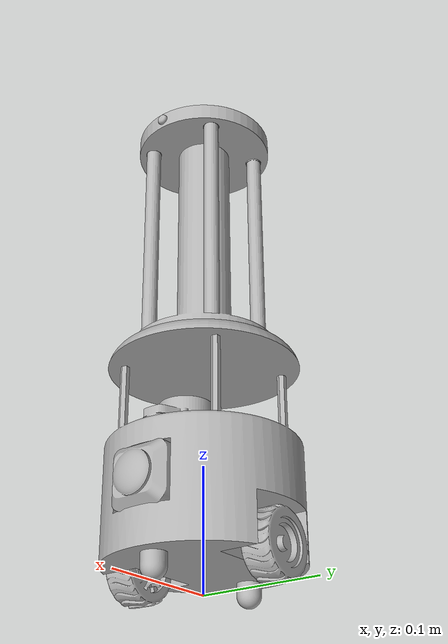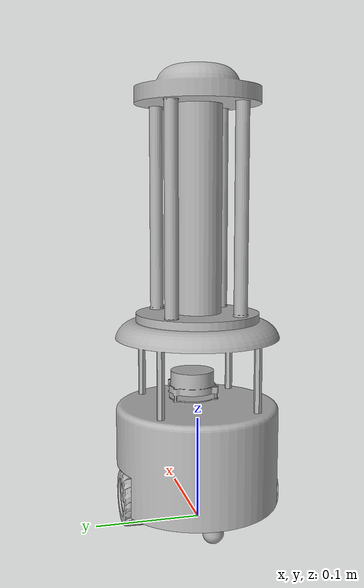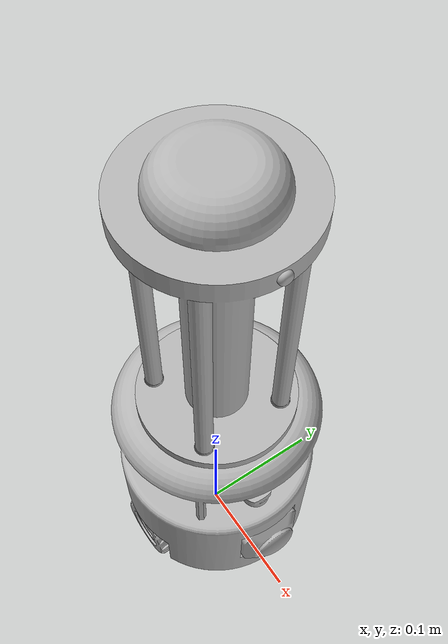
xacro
<?xml version="1.0" ?>
<robot name="ajrobot" xmlns:xacro="http://www.ros.org/wiki/xacro">

<xacro:include filename="$(find ajrobot_description)/urdf/materials.xacro" />
<xacro:include filename="$(find ajrobot_description)/urdf/ajrobot.trans" />
<xacro:include filename="$(find ajrobot_description)/gazebo/ajrobot_detailed_materials.gazebo" />
<xacro:include filename="$(find ajrobot_description)/gazebo/ajrobot_detailed_physics.gazebo" />
<xacro:include filename="$(find ajrobot_description)/gazebo/ajrobot_detailed_plugins.gazebo" />

<link name="base_link">
  <inertial>
    <origin rpy="0 0 0" xyz="-0.0018939651836912175 0.0007828486855805901 0.08750494563386604"/>
    <mass value="14.612879724425715"/>
    <inertia ixx="0.053945" ixy="-1e-06" ixz="-0.000455" iyy="0.056464" iyz="-1e-06" izz="0.04208"/>
  </inertial>
  <visual>
    <origin rpy="0 0 0" xyz="0 0 0"/>
    <geometry>
      <mesh filename="package://ajrobot_description/meshes/base_link.stl" scale="0.001 0.001 0.001"/>
    </geometry>
    <material name="silver"/>
  </visual>
  <collision>
    <origin rpy="0 0 0" xyz="0 0 0"/>
    <geometry>
      <mesh filename="package://ajrobot_description/meshes/base_link.stl" scale="0.001 0.001 0.001"/>
    </geometry>
  </collision>
</link>

<link name="rwheel_1">
  <inertial>
    <origin rpy="0 0 0" xyz="-6.839292989729178e-08 0.004782074005437467 -9.742423537351108e-08"/>
    <mass value="0.299599881711073"/>
    <inertia ixx="7.7e-05" ixy="0.0" ixz="0.0" iyy="0.000128" iyz="-0.0" izz="7.7e-05"/>
  </inertial>
  <visual>
    <origin rpy="0 0 0" xyz="-0.000209 0.068118 -0.027225"/>
    <geometry>
      <mesh filename="package://ajrobot_description/meshes/rwheel_1.stl" scale="0.001 0.001 0.001"/>
    </geometry>
    <material name="silver"/>
  </visual>
  <collision>
    <origin rpy="0 0 0" xyz="-0.000209 0.068118 -0.027225"/>
    <geometry>
      <mesh filename="package://ajrobot_description/meshes/rwheel_1.stl" scale="0.001 0.001 0.001"/>
    </geometry>
  </collision>
</link>

<link name="lwheel_1">
  <inertial>
    <origin rpy="0 0 0" xyz="-1.1529642886457642e-07 -0.004781660653823447 -9.74242354047361e-08"/>
    <mass value="0.2995998817110733"/>
    <inertia ixx="7.7e-05" ixy="0.0" ixz="-0.0" iyy="0.000128" iyz="0.0" izz="7.7e-05"/>
  </inertial>
  <visual>
    <origin rpy="0 0 0" xyz="-0.000209 -0.069032 -0.027225"/>
    <geometry>
      <mesh filename="package://ajrobot_description/meshes/lwheel_1.stl" scale="0.001 0.001 0.001"/>
    </geometry>
    <material name="silver"/>
  </visual>
  <collision>
    <origin rpy="0 0 0" xyz="-0.000209 -0.069032 -0.027225"/>
    <geometry>
      <mesh filename="package://ajrobot_description/meshes/lwheel_1.stl" scale="0.001 0.001 0.001"/>
    </geometry>
  </collision>
</link>

<link name="casterf_1">
  <inertial>
    <origin rpy="0 0 0" xyz="-0.020000091857341376 2.0664943358090528e-07 -0.008287607044725063"/>
    <mass value="0.03809624106129119"/>
    <inertia ixx="2e-06" ixy="0.0" ixz="0.0" iyy="2e-06" iyz="-0.0" izz="2e-06"/>
  </inertial>
  <visual>
    <origin rpy="0 0 0" xyz="-0.078209 -0.000782 -0.019425"/>
    <geometry>
      <mesh filename="package://ajrobot_description/meshes/casterf_1.stl" scale="0.001 0.001 0.001"/>
    </geometry>
    <material name="silver"/>
  </visual>
  <collision>
    <origin rpy="0 0 0" xyz="-0.078209 -0.000782 -0.019425"/>
    <geometry>
      <mesh filename="package://ajrobot_description/meshes/casterf_1.stl" scale="0.001 0.001 0.001"/>
    </geometry>
  </collision>
</link>

<link name="casterb_1">
  <inertial>
    <origin rpy="0 0 0" xyz="0.019999908142658653 2.0664943359424096e-07 -0.008287607044725063"/>
    <mass value="0.03809624106129119"/>
    <inertia ixx="2e-06" ixy="-0.0" ixz="0.0" iyy="2e-06" iyz="-0.0" izz="2e-06"/>
  </inertial>
  <visual>
    <origin rpy="0 0 0" xyz="0.077791 -0.000782 -0.019425"/>
    <geometry>
      <mesh filename="package://ajrobot_description/meshes/casterb_1.stl" scale="0.001 0.001 0.001"/>
    </geometry>
    <material name="silver"/>
  </visual>
  <collision>
    <origin rpy="0 0 0" xyz="0.077791 -0.000782 -0.019425"/>
    <geometry>
      <mesh filename="package://ajrobot_description/meshes/casterb_1.stl" scale="0.001 0.001 0.001"/>
    </geometry>
  </collision>
</link>

<link name="tube_frame_1">
  <inertial>
    <origin rpy="0 0 0" xyz="-4.080931042925483e-06 1.9031895149136755e-07 0.13065977257343506"/>
    <mass value="4.848852678240971"/>
    <inertia ixx="0.033448" ixy="0.0" ixz="1e-06" iyy="0.033447" iyz="0.0" izz="0.004073"/>
  </inertial>
  <visual>
    <origin rpy="0 0 0" xyz="-0.000209 -0.000782 -0.196225"/>
    <geometry>
      <mesh filename="package://ajrobot_description/meshes/tube_frame_1.stl" scale="0.001 0.001 0.001"/>
    </geometry>
    <material name="silver"/>
  </visual>
  <collision>
    <origin rpy="0 0 0" xyz="-0.000209 -0.000782 -0.196225"/>
    <geometry>
      <mesh filename="package://ajrobot_description/meshes/tube_frame_1.stl" scale="0.001 0.001 0.001"/>
    </geometry>
  </collision>
</link>

<link name="tubefr_1">
  <inertial>
    <origin rpy="0 0 0" xyz="-9.185672147915547e-08 2.0664943387038726e-07 0.09737489295527291"/>
    <mass value="0.20553219445659127"/>
    <inertia ixx="0.000734" ixy="-0.0" ixz="-0.0" iyy="0.000734" iyz="0.0" izz="4e-06"/>
  </inertial>
  <visual>
    <origin rpy="0 0 0" xyz="0.032291 0.031718 -0.204025"/>
    <geometry>
      <mesh filename="package://ajrobot_description/meshes/tubefr_1.stl" scale="0.001 0.001 0.001"/>
    </geometry>
    <material name="silver"/>
  </visual>
  <collision>
    <origin rpy="0 0 0" xyz="0.032291 0.031718 -0.204025"/>
    <geometry>
      <mesh filename="package://ajrobot_description/meshes/tubefr_1.stl" scale="0.001 0.001 0.001"/>
    </geometry>
  </collision>
</link>

<link name="tubebl_1">
  <inertial>
    <origin rpy="0 0 0" xyz="-9.185672179834459e-08 2.066494334679314e-07 0.09737489295527413"/>
    <mass value="0.20553219445659004"/>
    <inertia ixx="0.000734" ixy="-0.0" ixz="-0.0" iyy="0.000734" iyz="-0.0" izz="4e-06"/>
  </inertial>
  <visual>
    <origin rpy="0 0 0" xyz="-0.032709 -0.033282 -0.204025"/>
    <geometry>
      <mesh filename="package://ajrobot_description/meshes/tubebl_1.stl" scale="0.001 0.001 0.001"/>
    </geometry>
    <material name="silver"/>
  </visual>
  <collision>
    <origin rpy="0 0 0" xyz="-0.032709 -0.033282 -0.204025"/>
    <geometry>
      <mesh filename="package://ajrobot_description/meshes/tubebl_1.stl" scale="0.001 0.001 0.001"/>
    </geometry>
  </collision>
</link>

<link name="tubebr_1">
  <inertial>
    <origin rpy="0 0 0" xyz="-9.18567220134503e-08 2.0664941051407038e-07 0.09737489295527291"/>
    <mass value="0.20553219445659146"/>
    <inertia ixx="0.000734" ixy="0.0" ixz="-0.0" iyy="0.000734" iyz="0.0" izz="4e-06"/>
  </inertial>
  <visual>
    <origin rpy="0 0 0" xyz="-0.032709 0.031718 -0.204025"/>
    <geometry>
      <mesh filename="package://ajrobot_description/meshes/tubebr_1.stl" scale="0.001 0.001 0.001"/>
    </geometry>
    <material name="silver"/>
  </visual>
  <collision>
    <origin rpy="0 0 0" xyz="-0.032709 0.031718 -0.204025"/>
    <geometry>
      <mesh filename="package://ajrobot_description/meshes/tubebr_1.stl" scale="0.001 0.001 0.001"/>
    </geometry>
  </collision>
</link>

<link name="tubefl_1">
  <inertial>
    <origin rpy="0 0 0" xyz="-9.185672134037759e-08 2.0664941021569794e-07 0.1023748929552753"/>
    <mass value="0.20553219445659043"/>
    <inertia ixx="0.000734" ixy="-0.0" ixz="-0.0" iyy="0.000734" iyz="-0.0" izz="4e-06"/>
  </inertial>
  <visual>
    <origin rpy="0 0 0" xyz="0.032291 -0.033282 -0.197525"/>
    <geometry>
      <mesh filename="package://ajrobot_description/meshes/tubefl_1.stl" scale="0.001 0.001 0.001"/>
    </geometry>
    <material name="silver"/>
  </visual>
  <collision>
    <origin rpy="0 0 0" xyz="0.032291 -0.033282 -0.197525"/>
    <geometry>
      <mesh filename="package://ajrobot_description/meshes/tubefl_1.stl" scale="0.001 0.001 0.001"/>
    </geometry>
  </collision>
</link>

<link name="lidar_1">
  <inertial>
    <origin rpy="0 0 0" xyz="-0.02710148550851633 -3.962802308521418e-15 0.013424158875999292"/>
    <mass value="0.31426694711058734"/>
    <inertia ixx="5.5e-05" ixy="-0.0" ixz="1.7e-05" iyy="9.8e-05" iyz="0.0" izz="0.000113"/>
  </inertial>
  <visual>
    <origin rpy="0 0 0" xyz="-0.055 0.0 -0.115625"/>
    <geometry>
      <mesh filename="package://ajrobot_description/meshes/lidar_1.stl" scale="0.001 0.001 0.001"/>
    </geometry>
    <material name="silver"/>
  </visual>
  <collision>
    <origin rpy="0 0 0" xyz="-0.055 0.0 -0.115625"/>
    <geometry>
      <mesh filename="package://ajrobot_description/meshes/lidar_1.stl" scale="0.001 0.001 0.001"/>
    </geometry>
  </collision>
</link>

<link name="camera_1">
  <inertial>
    <origin rpy="0 0 0" xyz="0.01651690664406253 2.1949062960755807e-07 2.4225212578415922e-05"/>
    <mass value="0.5431241307352369"/>
    <inertia ixx="0.000185" ixy="0.0" ixz="0.0" iyy="0.000131" iyz="0.0" izz="0.000143"/>
  </inertial>
  <visual>
    <origin rpy="0 0 0" xyz="-0.052209 -0.000782 -0.071425"/>
    <geometry>
      <mesh filename="package://ajrobot_description/meshes/camera_1.stl" scale="0.001 0.001 0.001"/>
    </geometry>
    <material name="silver"/>
  </visual>
  <collision>
    <origin rpy="0 0 0" xyz="-0.052209 -0.000782 -0.071425"/>
    <geometry>
      <mesh filename="package://ajrobot_description/meshes/camera_1.stl" scale="0.001 0.001 0.001"/>
    </geometry>
  </collision>
</link>

<link name="pir_1">
  <inertial>
    <origin rpy="0 0 0" xyz="0.0017280643759984352 4.3683251460535644e-14 -1.1102230246251565e-16"/>
    <mass value="0.001707151080172322"/>
    <inertia ixx="0.0" ixy="-0.0" ixz="0.0" iyy="0.0" iyz="0.0" izz="0.0"/>
  </inertial>
  <visual>
    <origin rpy="0 0 0" xyz="-0.058 -0.0 -0.404"/>
    <geometry>
      <mesh filename="package://ajrobot_description/meshes/pir_1.stl" scale="0.001 0.001 0.001"/>
    </geometry>
    <material name="silver"/>
  </visual>
  <collision>
    <origin rpy="0 0 0" xyz="-0.058 -0.0 -0.404"/>
    <geometry>
      <mesh filename="package://ajrobot_description/meshes/pir_1.stl" scale="0.001 0.001 0.001"/>
    </geometry>
  </collision>
</link>

<joint name="rwheel_joint" type="continuous">
  <origin rpy="0 0 0" xyz="0.000209 -0.068118 0.027225"/>
  <parent link="base_link"/>
  <child link="rwheel_1"/>
  <axis xyz="-0.0 1.0 -0.0"/>
</joint>

<joint name="lwheel_joint" type="continuous">
  <origin rpy="0 0 0" xyz="0.000209 0.069032 0.027225"/>
  <parent link="base_link"/>
  <child link="lwheel_1"/>
  <axis xyz="0.0 1.0 -0.0"/>
</joint>

<joint name="casterf_joint" type="fixed">
  <origin rpy="0 0 0" xyz="0.078209 0.000782 0.019425"/>
  <parent link="base_link"/>
  <child link="casterf_1"/>
</joint>

<joint name="casterb_joint" type="fixed">
  <origin rpy="0 0 0" xyz="-0.077791 0.000782 0.019425"/>
  <parent link="base_link"/>
  <child link="casterb_1"/>
</joint>

<joint name="tubeframe_joint" type="fixed">
  <origin rpy="0 0 0" xyz="0.000209 0.000782 0.196225"/>
  <parent link="base_link"/>
  <child link="tube_frame_1"/>
</joint>

<joint name="tubefr_joint" type="fixed">
  <origin rpy="0 0 0" xyz="-0.0325 -0.0325 0.0078"/>
  <parent link="tube_frame_1"/>
  <child link="tubefr_1"/>
</joint>

<joint name="tubebl_joint" type="fixed">
  <origin rpy="0 0 0" xyz="0.0325 0.0325 0.0078"/>
  <parent link="tube_frame_1"/>
  <child link="tubebl_1"/>
</joint>

<joint name="tubebr_joint" type="fixed">
  <origin rpy="0 0 0" xyz="0.0325 -0.0325 0.0078"/>
  <parent link="tube_frame_1"/>
  <child link="tubebr_1"/>
</joint>

<joint name="tubefl_joint" type="fixed">
  <origin rpy="0 0 0" xyz="-0.0325 0.0325 0.0013"/>
  <parent link="tube_frame_1"/>
  <child link="tubefl_1"/>
</joint>

<joint name="lidar_joint" type="fixed">
  <origin rpy="0 0 0" xyz="0.055 0.0 0.115625"/>
  <parent link="base_link"/>
  <child link="lidar_1"/>
</joint>

<joint name="camera_joint" type="fixed">
  <origin rpy="0 0 0" xyz="0.052209 0.000782 0.071425"/>
  <parent link="base_link"/>
  <child link="camera_1"/>
</joint>

<joint name="pir_joint" type="fixed">
  <origin rpy="0 0 0" xyz="0.057791 -0.000782 0.207775"/>
  <parent link="tube_frame_1"/>
  <child link="pir_1"/>
</joint>

</robot>

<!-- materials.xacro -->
<robot name="ajrobot" xmlns:xacro="http://www.ros.org/wiki/xacro" >

<material name="silver">
  <color rgba="0.700 0.700 0.700 1.000"/>
</material>

</robot>

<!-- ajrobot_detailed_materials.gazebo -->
<robot name="ajrobot" xmlns:xacro="http://www.ros.org/wiki/xacro" >

<xacro:property name="body_color" value="Gazebo/DarkGrey" />
<xacro:property name="blueglow_color" value="Gazebo/BlueGlow" />
<xacro:property name="silver_color" value="Gazebo/Silver" />
<xacro:property name="flatblack_color" value="Gazebo/FlatBlack" />
<xacro:property name="blue_color" value="Gazebo/Blue" />

<gazebo reference="base_link">
  <material>${body_color}</material>
</gazebo>

<gazebo reference="rwheel_1">
  <material>${flatblack_color}</material>
</gazebo>

<gazebo reference="lwheel_1">
  <material>${flatblack_color}</material>
</gazebo>

<gazebo reference="casterf_1">
  <material>${blue_color}</material>
</gazebo>

<gazebo reference="casterb_1">
  <material>${blue_color}</material>
</gazebo>

<gazebo reference="tube_frame_1">
  <material>${silver_color}</material>
</gazebo>

<gazebo reference="tubefr_1">
  <material>${blueglow_color}</material>
</gazebo>

<gazebo reference="tubebl_1">
  <material>${blueglow_color}</material>
</gazebo>

<gazebo reference="tubebr_1">
  <material>${blueglow_color}</material>
</gazebo>

<gazebo reference="tubefl_1">
  <material>${blueglow_color}</material>
</gazebo>

<gazebo reference="lidar_1">
  <material>${blue_color}</material>
</gazebo>

<gazebo reference="camera_1">
  <material>${flatblack_color}</material>
</gazebo>

<gazebo reference="pir_1">
  <material>${blue_color}</material>
</gazebo>

</robot>
